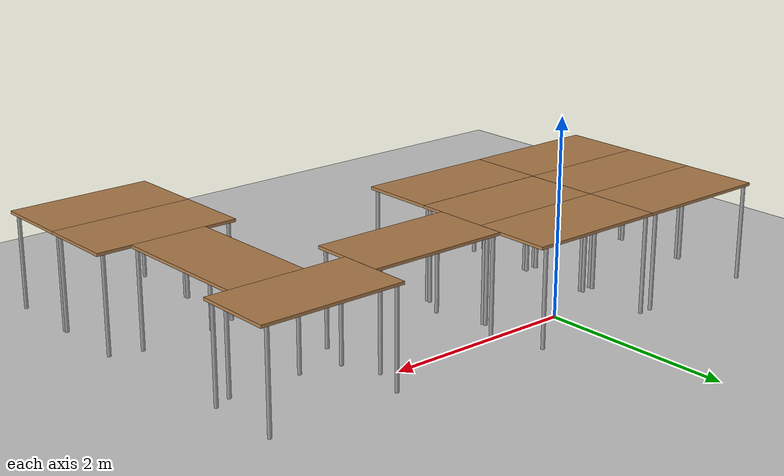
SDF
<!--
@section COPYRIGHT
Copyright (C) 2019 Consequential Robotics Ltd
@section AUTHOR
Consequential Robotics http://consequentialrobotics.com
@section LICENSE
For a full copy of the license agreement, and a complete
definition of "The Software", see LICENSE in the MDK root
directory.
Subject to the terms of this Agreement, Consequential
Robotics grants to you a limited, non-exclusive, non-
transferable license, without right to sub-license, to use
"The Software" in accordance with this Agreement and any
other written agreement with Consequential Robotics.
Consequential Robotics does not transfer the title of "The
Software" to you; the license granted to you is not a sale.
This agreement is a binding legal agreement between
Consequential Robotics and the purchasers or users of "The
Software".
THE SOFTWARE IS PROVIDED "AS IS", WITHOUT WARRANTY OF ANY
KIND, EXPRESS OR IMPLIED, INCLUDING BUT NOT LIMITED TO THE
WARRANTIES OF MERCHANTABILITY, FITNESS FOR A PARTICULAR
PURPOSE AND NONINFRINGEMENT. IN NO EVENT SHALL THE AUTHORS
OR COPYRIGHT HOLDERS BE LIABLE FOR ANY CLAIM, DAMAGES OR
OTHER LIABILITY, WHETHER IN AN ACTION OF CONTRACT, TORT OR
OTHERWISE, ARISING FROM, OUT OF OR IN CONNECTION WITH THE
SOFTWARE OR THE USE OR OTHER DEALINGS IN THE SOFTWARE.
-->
<sdf version="1.6">
 <world name="default">
  <physics name="default_physics" default="0" type="ode">
   <max_step_size>0.002</max_step_size>
   <real_time_factor>1</real_time_factor>
   <real_time_update_rate>500</real_time_update_rate>
  </physics>
  <scene><ambient>0.4 0.4 0.4 1</ambient><background>0.7 0.7 0.7 1</background><shadows>1</shadows></scene>
  <light name="sun" type="directional">
   <pose>0 0 10 0 -0 0</pose>
   <diffuse>0.8 0.8 0.8 1</diffuse>
   <specular>0.1 0.1 0.1 1</specular>
   <attenuation>
    <range>1000</range>
    <constant>0.9</constant>
    <linear>0.01</linear>
    <quadratic>0.001</quadratic>
   </attenuation>
   <direction>-0.5 0.5 -1</direction>
  </light>
  <model name="ground_plane">
   <static>1</static>
   <link name="link">
    <collision name="collision">
     <geometry><plane><normal>0 0 1</normal><size>100 100</size></plane></geometry>
     <surface><friction><ode><mu>1</mu><mu2>1</mu2></ode></friction></surface>
    </collision>
    <visual name="visual">
     <cast_shadows>0</cast_shadows>
     <geometry><plane><normal>0 0 1</normal><size>100 100</size></plane></geometry>
     <material>
      <script><uri>file://media/materials/scripts/gazebo.material</uri><name>Gazebo/Grey</name></script>
     </material>
    </visual>
   </link>
  </model>
  <gravity>0 0 -9.8</gravity>
  <magnetic_field>6e-06 2.3e-05 -4.2e-05</magnetic_field>
  <atmosphere type="adiabatic"/>
  <spherical_coordinates>
   <surface_model>EARTH_WGS84</surface_model>
   <latitude_deg>0</latitude_deg>
   <longitude_deg>0</longitude_deg>
   <elevation>0</elevation>
   <heading_deg>0</heading_deg>
  </spherical_coordinates>
  <model name="table">
   <static>1</static>
   <link name="link">
    <collision name="surface">
     <pose>0 0 1 0 -0 0</pose>
     <geometry><box><size>1.5 0.8 0.03</size></box></geometry>
     <surface><friction><ode><mu>0.6</mu><mu2>0.6</mu2></ode></friction></surface>
    </collision>
    <visual name="visual1">
     <pose>0 0 1 0 -0 0</pose>
     <geometry><box><size>1.5 0.8 0.03</size></box></geometry>
     <material>
      <script><uri>file://media/materials/scripts/gazebo.material</uri><name>Gazebo/Wood</name></script>
     </material>
    </visual>
    <collision name="front_left_leg">
     <pose>0.68 0.38 0.5 0 -0 0</pose>
     <geometry><cylinder><radius>0.02</radius><length>1</length></cylinder></geometry>
    </collision>
    <visual name="front_left_leg">
     <pose>0.68 0.38 0.5 0 -0 0</pose>
     <geometry><cylinder><radius>0.02</radius><length>1</length></cylinder></geometry>
     <material>
      <script><uri>file://media/materials/scripts/gazebo.material</uri><name>Gazebo/Grey</name></script>
     </material>
    </visual>
    <collision name="front_right_leg">
     <pose>0.68 -0.38 0.5 0 -0 0</pose>
     <geometry><cylinder><radius>0.02</radius><length>1</length></cylinder></geometry>
    </collision>
    <visual name="front_right_leg">
     <pose>0.68 -0.38 0.5 0 -0 0</pose>
     <geometry><cylinder><radius>0.02</radius><length>1</length></cylinder></geometry>
     <material>
      <script><uri>file://media/materials/scripts/gazebo.material</uri><name>Gazebo/Grey</name></script>
     </material>
    </visual>
    <collision name="back_right_leg">
     <pose>-0.68 -0.38 0.5 0 -0 0</pose>
     <geometry><cylinder><radius>0.02</radius><length>1</length></cylinder></geometry>
    </collision>
    <visual name="back_right_leg">
     <pose>-0.68 -0.38 0.5 0 -0 0</pose>
     <geometry><cylinder><radius>0.02</radius><length>1</length></cylinder></geometry>
     <material>
      <script><uri>file://media/materials/scripts/gazebo.material</uri><name>Gazebo/Grey</name></script>
     </material>
    </visual>
    <collision name="back_left_leg">
     <pose>-0.68 0.38 0.5 0 -0 0</pose>
     <geometry><cylinder><radius>0.02</radius><length>1</length></cylinder></geometry>
    </collision>
    <visual name="back_left_leg">
     <pose>-0.68 0.38 0.5 0 -0 0</pose>
     <geometry><cylinder><radius>0.02</radius><length>1</length></cylinder></geometry>
     <material>
      <script><uri>file://media/materials/scripts/gazebo.material</uri><name>Gazebo/Grey</name></script>
     </material>
    </visual>
   </link>
   <pose>-0.029865 -1.50426 0.000771 0 -0 0</pose>
  </model>
  <model name="table_0">
   <static>1</static>
   <link name="link">
    <collision name="surface">
     <pose>0 0 1 0 -0 0</pose>
     <geometry><box><size>1.5 0.8 0.03</size></box></geometry>
     <surface><friction><ode><mu>0.6</mu><mu2>0.6</mu2></ode></friction></surface>
    </collision>
    <visual name="visual1">
     <pose>0 0 1 0 -0 0</pose>
     <geometry><box><size>1.5 0.8 0.03</size></box></geometry>
     <material>
      <script><uri>file://media/materials/scripts/gazebo.material</uri><name>Gazebo/Wood</name></script>
     </material>
    </visual>
    <collision name="front_left_leg">
     <pose>0.68 0.38 0.5 0 -0 0</pose>
     <geometry><cylinder><radius>0.02</radius><length>1</length></cylinder></geometry>
    </collision>
    <visual name="front_left_leg">
     <pose>0.68 0.38 0.5 0 -0 0</pose>
     <geometry><cylinder><radius>0.02</radius><length>1</length></cylinder></geometry>
     <material>
      <script><uri>file://media/materials/scripts/gazebo.material</uri><name>Gazebo/Grey</name></script>
     </material>
    </visual>
    <collision name="front_right_leg">
     <pose>0.68 -0.38 0.5 0 -0 0</pose>
     <geometry><cylinder><radius>0.02</radius><length>1</length></cylinder></geometry>
    </collision>
    <visual name="front_right_leg">
     <pose>0.68 -0.38 0.5 0 -0 0</pose>
     <geometry><cylinder><radius>0.02</radius><length>1</length></cylinder></geometry>
     <material>
      <script><uri>file://media/materials/scripts/gazebo.material</uri><name>Gazebo/Grey</name></script>
     </material>
    </visual>
    <collision name="back_right_leg">
     <pose>-0.68 -0.38 0.5 0 -0 0</pose>
     <geometry><cylinder><radius>0.02</radius><length>1</length></cylinder></geometry>
    </collision>
    <visual name="back_right_leg">
     <pose>-0.68 -0.38 0.5 0 -0 0</pose>
     <geometry><cylinder><radius>0.02</radius><length>1</length></cylinder></geometry>
     <material>
      <script><uri>file://media/materials/scripts/gazebo.material</uri><name>Gazebo/Grey</name></script>
     </material>
    </visual>
    <collision name="back_left_leg">
     <pose>-0.68 0.38 0.5 0 -0 0</pose>
     <geometry><cylinder><radius>0.02</radius><length>1</length></cylinder></geometry>
    </collision>
    <visual name="back_left_leg">
     <pose>-0.68 0.38 0.5 0 -0 0</pose>
     <geometry><cylinder><radius>0.02</radius><length>1</length></cylinder></geometry>
     <material>
      <script><uri>file://media/materials/scripts/gazebo.material</uri><name>Gazebo/Grey</name></script>
     </material>
    </visual>
   </link>
   <pose>-0.026902 -0.70555 0 0 -0 0</pose>
  </model>
  <model name="table_1">
   <static>1</static>
   <link name="link">
    <collision name="surface">
     <pose>0 0 1 0 -0 0</pose>
     <geometry><box><size>1.5 0.8 0.03</size></box></geometry>
     <surface><friction><ode><mu>0.6</mu><mu2>0.6</mu2></ode></friction></surface>
    </collision>
    <visual name="visual1">
     <pose>0 0 1 0 -0 0</pose>
     <geometry><box><size>1.5 0.8 0.03</size></box></geometry>
     <material>
      <script><uri>file://media/materials/scripts/gazebo.material</uri><name>Gazebo/Wood</name></script>
     </material>
    </visual>
    <collision name="front_left_leg">
     <pose>0.68 0.38 0.5 0 -0 0</pose>
     <geometry><cylinder><radius>0.02</radius><length>1</length></cylinder></geometry>
    </collision>
    <visual name="front_left_leg">
     <pose>0.68 0.38 0.5 0 -0 0</pose>
     <geometry><cylinder><radius>0.02</radius><length>1</length></cylinder></geometry>
     <material>
      <script><uri>file://media/materials/scripts/gazebo.material</uri><name>Gazebo/Grey</name></script>
     </material>
    </visual>
    <collision name="front_right_leg">
     <pose>0.68 -0.38 0.5 0 -0 0</pose>
     <geometry><cylinder><radius>0.02</radius><length>1</length></cylinder></geometry>
    </collision>
    <visual name="front_right_leg">
     <pose>0.68 -0.38 0.5 0 -0 0</pose>
     <geometry><cylinder><radius>0.02</radius><length>1</length></cylinder></geometry>
     <material>
      <script><uri>file://media/materials/scripts/gazebo.material</uri><name>Gazebo/Grey</name></script>
     </material>
    </visual>
    <collision name="back_right_leg">
     <pose>-0.68 -0.38 0.5 0 -0 0</pose>
     <geometry><cylinder><radius>0.02</radius><length>1</length></cylinder></geometry>
    </collision>
    <visual name="back_right_leg">
     <pose>-0.68 -0.38 0.5 0 -0 0</pose>
     <geometry><cylinder><radius>0.02</radius><length>1</length></cylinder></geometry>
     <material>
      <script><uri>file://media/materials/scripts/gazebo.material</uri><name>Gazebo/Grey</name></script>
     </material>
    </visual>
    <collision name="back_left_leg">
     <pose>-0.68 0.38 0.5 0 -0 0</pose>
     <geometry><cylinder><radius>0.02</radius><length>1</length></cylinder></geometry>
    </collision>
    <visual name="back_left_leg">
     <pose>-0.68 0.38 0.5 0 -0 0</pose>
     <geometry><cylinder><radius>0.02</radius><length>1</length></cylinder></geometry>
     <material>
      <script><uri>file://media/materials/scripts/gazebo.material</uri><name>Gazebo/Grey</name></script>
     </material>
    </visual>
   </link>
   <pose>1.4722 -0.449063 0 0 -0 0</pose>
  </model>
  <model name="table_2">
   <static>1</static>
   <link name="link">
    <collision name="surface">
     <pose>0 0 1 0 -0 0</pose>
     <geometry><box><size>1.5 0.8 0.03</size></box></geometry>
     <surface><friction><ode><mu>0.6</mu><mu2>0.6</mu2></ode></friction></surface>
    </collision>
    <visual name="visual1">
     <pose>0 0 1 0 -0 0</pose>
     <geometry><box><size>1.5 0.8 0.03</size></box></geometry>
     <material>
      <script><uri>file://media/materials/scripts/gazebo.material</uri><name>Gazebo/Wood</name></script>
     </material>
    </visual>
    <collision name="front_left_leg">
     <pose>0.68 0.38 0.5 0 -0 0</pose>
     <geometry><cylinder><radius>0.02</radius><length>1</length></cylinder></geometry>
    </collision>
    <visual name="front_left_leg">
     <pose>0.68 0.38 0.5 0 -0 0</pose>
     <geometry><cylinder><radius>0.02</radius><length>1</length></cylinder></geometry>
     <material>
      <script><uri>file://media/materials/scripts/gazebo.material</uri><name>Gazebo/Grey</name></script>
     </material>
    </visual>
    <collision name="front_right_leg">
     <pose>0.68 -0.38 0.5 0 -0 0</pose>
     <geometry><cylinder><radius>0.02</radius><length>1</length></cylinder></geometry>
    </collision>
    <visual name="front_right_leg">
     <pose>0.68 -0.38 0.5 0 -0 0</pose>
     <geometry><cylinder><radius>0.02</radius><length>1</length></cylinder></geometry>
     <material>
      <script><uri>file://media/materials/scripts/gazebo.material</uri><name>Gazebo/Grey</name></script>
     </material>
    </visual>
    <collision name="back_right_leg">
     <pose>-0.68 -0.38 0.5 0 -0 0</pose>
     <geometry><cylinder><radius>0.02</radius><length>1</length></cylinder></geometry>
    </collision>
    <visual name="back_right_leg">
     <pose>-0.68 -0.38 0.5 0 -0 0</pose>
     <geometry><cylinder><radius>0.02</radius><length>1</length></cylinder></geometry>
     <material>
      <script><uri>file://media/materials/scripts/gazebo.material</uri><name>Gazebo/Grey</name></script>
     </material>
    </visual>
    <collision name="back_left_leg">
     <pose>-0.68 0.38 0.5 0 -0 0</pose>
     <geometry><cylinder><radius>0.02</radius><length>1</length></cylinder></geometry>
    </collision>
    <visual name="back_left_leg">
     <pose>-0.68 0.38 0.5 0 -0 0</pose>
     <geometry><cylinder><radius>0.02</radius><length>1</length></cylinder></geometry>
     <material>
      <script><uri>file://media/materials/scripts/gazebo.material</uri><name>Gazebo/Grey</name></script>
     </material>
    </visual>
   </link>
   <pose>2.97282 -0.063954 0 0 -0 0</pose>
  </model>
  <model name="table_3">
   <static>1</static>
   <link name="link">
    <collision name="surface">
     <pose>0 0 1 0 -0 0</pose>
     <geometry><box><size>1.5 0.8 0.03</size></box></geometry>
     <surface><friction><ode><mu>0.6</mu><mu2>0.6</mu2></ode></friction></surface>
    </collision>
    <visual name="visual1">
     <pose>0 0 1 0 -0 0</pose>
     <geometry><box><size>1.5 0.8 0.03</size></box></geometry>
     <material>
      <script><uri>file://media/materials/scripts/gazebo.material</uri><name>Gazebo/Wood</name></script>
     </material>
    </visual>
    <collision name="front_left_leg">
     <pose>0.68 0.38 0.5 0 -0 0</pose>
     <geometry><cylinder><radius>0.02</radius><length>1</length></cylinder></geometry>
    </collision>
    <visual name="front_left_leg">
     <pose>0.68 0.38 0.5 0 -0 0</pose>
     <geometry><cylinder><radius>0.02</radius><length>1</length></cylinder></geometry>
     <material>
      <script><uri>file://media/materials/scripts/gazebo.material</uri><name>Gazebo/Grey</name></script>
     </material>
    </visual>
    <collision name="front_right_leg">
     <pose>0.68 -0.38 0.5 0 -0 0</pose>
     <geometry><cylinder><radius>0.02</radius><length>1</length></cylinder></geometry>
    </collision>
    <visual name="front_right_leg">
     <pose>0.68 -0.38 0.5 0 -0 0</pose>
     <geometry><cylinder><radius>0.02</radius><length>1</length></cylinder></geometry>
     <material>
      <script><uri>file://media/materials/scripts/gazebo.material</uri><name>Gazebo/Grey</name></script>
     </material>
    </visual>
    <collision name="back_right_leg">
     <pose>-0.68 -0.38 0.5 0 -0 0</pose>
     <geometry><cylinder><radius>0.02</radius><length>1</length></cylinder></geometry>
    </collision>
    <visual name="back_right_leg">
     <pose>-0.68 -0.38 0.5 0 -0 0</pose>
     <geometry><cylinder><radius>0.02</radius><length>1</length></cylinder></geometry>
     <material>
      <script><uri>file://media/materials/scripts/gazebo.material</uri><name>Gazebo/Grey</name></script>
     </material>
    </visual>
    <collision name="back_left_leg">
     <pose>-0.68 0.38 0.5 0 -0 0</pose>
     <geometry><cylinder><radius>0.02</radius><length>1</length></cylinder></geometry>
    </collision>
    <visual name="back_left_leg">
     <pose>-0.68 0.38 0.5 0 -0 0</pose>
     <geometry><cylinder><radius>0.02</radius><length>1</length></cylinder></geometry>
     <material>
      <script><uri>file://media/materials/scripts/gazebo.material</uri><name>Gazebo/Grey</name></script>
     </material>
    </visual>
   </link>
   <pose>3.08562 -1.20755 0 0 0 -1.56493</pose>
  </model>
  <model name="table_4">
   <static>1</static>
   <link name="link">
    <collision name="surface">
     <pose>0 0 1 0 -0 0</pose>
     <geometry><box><size>1.5 0.8 0.03</size></box></geometry>
     <surface><friction><ode><mu>0.6</mu><mu2>0.6</mu2></ode></friction></surface>
    </collision>
    <visual name="visual1">
     <pose>0 0 1 0 -0 0</pose>
     <geometry><box><size>1.5 0.8 0.03</size></box></geometry>
     <material>
      <script><uri>file://media/materials/scripts/gazebo.material</uri><name>Gazebo/Wood</name></script>
     </material>
    </visual>
    <collision name="front_left_leg">
     <pose>0.68 0.38 0.5 0 -0 0</pose>
     <geometry><cylinder><radius>0.02</radius><length>1</length></cylinder></geometry>
    </collision>
    <visual name="front_left_leg">
     <pose>0.68 0.38 0.5 0 -0 0</pose>
     <geometry><cylinder><radius>0.02</radius><length>1</length></cylinder></geometry>
     <material>
      <script><uri>file://media/materials/scripts/gazebo.material</uri><name>Gazebo/Grey</name></script>
     </material>
    </visual>
    <collision name="front_right_leg">
     <pose>0.68 -0.38 0.5 0 -0 0</pose>
     <geometry><cylinder><radius>0.02</radius><length>1</length></cylinder></geometry>
    </collision>
    <visual name="front_right_leg">
     <pose>0.68 -0.38 0.5 0 -0 0</pose>
     <geometry><cylinder><radius>0.02</radius><length>1</length></cylinder></geometry>
     <material>
      <script><uri>file://media/materials/scripts/gazebo.material</uri><name>Gazebo/Grey</name></script>
     </material>
    </visual>
    <collision name="back_right_leg">
     <pose>-0.68 -0.38 0.5 0 -0 0</pose>
     <geometry><cylinder><radius>0.02</radius><length>1</length></cylinder></geometry>
    </collision>
    <visual name="back_right_leg">
     <pose>-0.68 -0.38 0.5 0 -0 0</pose>
     <geometry><cylinder><radius>0.02</radius><length>1</length></cylinder></geometry>
     <material>
      <script><uri>file://media/materials/scripts/gazebo.material</uri><name>Gazebo/Grey</name></script>
     </material>
    </visual>
    <collision name="back_left_leg">
     <pose>-0.68 0.38 0.5 0 -0 0</pose>
     <geometry><cylinder><radius>0.02</radius><length>1</length></cylinder></geometry>
    </collision>
    <visual name="back_left_leg">
     <pose>-0.68 0.38 0.5 0 -0 0</pose>
     <geometry><cylinder><radius>0.02</radius><length>1</length></cylinder></geometry>
     <material>
      <script><uri>file://media/materials/scripts/gazebo.material</uri><name>Gazebo/Grey</name></script>
     </material>
    </visual>
   </link>
   <pose>3.09599 -2.35553 0 0 -0 0</pose>
  </model>
  <model name="table_4_clone">
   <static>1</static>
   <link name="link">
    <collision name="surface">
     <pose>0 0 1 0 -0 0</pose>
     <geometry><box><size>1.5 0.8 0.03</size></box></geometry>
     <surface><friction><ode><mu>0.6</mu><mu2>0.6</mu2></ode></friction></surface>
    </collision>
    <visual name="visual1">
     <pose>0 0 1 0 -0 0</pose>
     <geometry><box><size>1.5 0.8 0.03</size></box></geometry>
     <material>
      <script><uri>file://media/materials/scripts/gazebo.material</uri><name>Gazebo/Wood</name></script>
     </material>
    </visual>
    <collision name="front_left_leg">
     <pose>0.68 0.38 0.5 0 -0 0</pose>
     <geometry><cylinder><radius>0.02</radius><length>1</length></cylinder></geometry>
    </collision>
    <visual name="front_left_leg">
     <pose>0.68 0.38 0.5 0 -0 0</pose>
     <geometry><cylinder><radius>0.02</radius><length>1</length></cylinder></geometry>
     <material>
      <script><uri>file://media/materials/scripts/gazebo.material</uri><name>Gazebo/Grey</name></script>
     </material>
    </visual>
    <collision name="front_right_leg">
     <pose>0.68 -0.38 0.5 0 -0 0</pose>
     <geometry><cylinder><radius>0.02</radius><length>1</length></cylinder></geometry>
    </collision>
    <visual name="front_right_leg">
     <pose>0.68 -0.38 0.5 0 -0 0</pose>
     <geometry><cylinder><radius>0.02</radius><length>1</length></cylinder></geometry>
     <material>
      <script><uri>file://media/materials/scripts/gazebo.material</uri><name>Gazebo/Grey</name></script>
     </material>
    </visual>
    <collision name="back_right_leg">
     <pose>-0.68 -0.38 0.5 0 -0 0</pose>
     <geometry><cylinder><radius>0.02</radius><length>1</length></cylinder></geometry>
    </collision>
    <visual name="back_right_leg">
     <pose>-0.68 -0.38 0.5 0 -0 0</pose>
     <geometry><cylinder><radius>0.02</radius><length>1</length></cylinder></geometry>
     <material>
      <script><uri>file://media/materials/scripts/gazebo.material</uri><name>Gazebo/Grey</name></script>
     </material>
    </visual>
    <collision name="back_left_leg">
     <pose>-0.68 0.38 0.5 0 -0 0</pose>
     <geometry><cylinder><radius>0.02</radius><length>1</length></cylinder></geometry>
    </collision>
    <visual name="back_left_leg">
     <pose>-0.68 0.38 0.5 0 -0 0</pose>
     <geometry><cylinder><radius>0.02</radius><length>1</length></cylinder></geometry>
     <material>
      <script><uri>file://media/materials/scripts/gazebo.material</uri><name>Gazebo/Grey</name></script>
     </material>
    </visual>
   </link>
   <pose>3.09585 -3.15557 0 0 -0 0</pose>
  </model>
  <model name="table_clone">
   <static>1</static>
   <link name="link">
    <collision name="surface">
     <pose>0 0 1 0 -0 0</pose>
     <geometry><box><size>1.5 0.8 0.03</size></box></geometry>
     <surface><friction><ode><mu>0.6</mu><mu2>0.6</mu2></ode></friction></surface>
    </collision>
    <visual name="visual1">
     <pose>0 0 1 0 -0 0</pose>
     <geometry><box><size>1.5 0.8 0.03</size></box></geometry>
     <material>
      <script><uri>file://media/materials/scripts/gazebo.material</uri><name>Gazebo/Wood</name></script>
     </material>
    </visual>
    <collision name="front_left_leg">
     <pose>0.68 0.38 0.5 0 -0 0</pose>
     <geometry><cylinder><radius>0.02</radius><length>1</length></cylinder></geometry>
    </collision>
    <visual name="front_left_leg">
     <pose>0.68 0.38 0.5 0 -0 0</pose>
     <geometry><cylinder><radius>0.02</radius><length>1</length></cylinder></geometry>
     <material>
      <script><uri>file://media/materials/scripts/gazebo.material</uri><name>Gazebo/Grey</name></script>
     </material>
    </visual>
    <collision name="front_right_leg">
     <pose>0.68 -0.38 0.5 0 -0 0</pose>
     <geometry><cylinder><radius>0.02</radius><length>1</length></cylinder></geometry>
    </collision>
    <visual name="front_right_leg">
     <pose>0.68 -0.38 0.5 0 -0 0</pose>
     <geometry><cylinder><radius>0.02</radius><length>1</length></cylinder></geometry>
     <material>
      <script><uri>file://media/materials/scripts/gazebo.material</uri><name>Gazebo/Grey</name></script>
     </material>
    </visual>
    <collision name="back_right_leg">
     <pose>-0.68 -0.38 0.5 0 -0 0</pose>
     <geometry><cylinder><radius>0.02</radius><length>1</length></cylinder></geometry>
    </collision>
    <visual name="back_right_leg">
     <pose>-0.68 -0.38 0.5 0 -0 0</pose>
     <geometry><cylinder><radius>0.02</radius><length>1</length></cylinder></geometry>
     <material>
      <script><uri>file://media/materials/scripts/gazebo.material</uri><name>Gazebo/Grey</name></script>
     </material>
    </visual>
    <collision name="back_left_leg">
     <pose>-0.68 0.38 0.5 0 -0 0</pose>
     <geometry><cylinder><radius>0.02</radius><length>1</length></cylinder></geometry>
    </collision>
    <visual name="back_left_leg">
     <pose>-0.68 0.38 0.5 0 -0 0</pose>
     <geometry><cylinder><radius>0.02</radius><length>1</length></cylinder></geometry>
     <material>
      <script><uri>file://media/materials/scripts/gazebo.material</uri><name>Gazebo/Grey</name></script>
     </material>
    </visual>
   </link>
   <pose>-0.026556 0.092503 0.000771 0 -0 0</pose>
  </model>
  <model name="table_clone_clone">
   <static>1</static>
   <link name="link">
    <collision name="surface">
     <pose>0 0 1 0 -0 0</pose>
     <geometry><box><size>1.5 0.8 0.03</size></box></geometry>
     <surface><friction><ode><mu>0.6</mu><mu2>0.6</mu2></ode></friction></surface>
    </collision>
    <visual name="visual1">
     <pose>0 0 1 0 -0 0</pose>
     <geometry><box><size>1.5 0.8 0.03</size></box></geometry>
     <material>
      <script><uri>file://media/materials/scripts/gazebo.material</uri><name>Gazebo/Wood</name></script>
     </material>
    </visual>
    <collision name="front_left_leg">
     <pose>0.68 0.38 0.5 0 -0 0</pose>
     <geometry><cylinder><radius>0.02</radius><length>1</length></cylinder></geometry>
    </collision>
    <visual name="front_left_leg">
     <pose>0.68 0.38 0.5 0 -0 0</pose>
     <geometry><cylinder><radius>0.02</radius><length>1</length></cylinder></geometry>
     <material>
      <script><uri>file://media/materials/scripts/gazebo.material</uri><name>Gazebo/Grey</name></script>
     </material>
    </visual>
    <collision name="front_right_leg">
     <pose>0.68 -0.38 0.5 0 -0 0</pose>
     <geometry><cylinder><radius>0.02</radius><length>1</length></cylinder></geometry>
    </collision>
    <visual name="front_right_leg">
     <pose>0.68 -0.38 0.5 0 -0 0</pose>
     <geometry><cylinder><radius>0.02</radius><length>1</length></cylinder></geometry>
     <material>
      <script><uri>file://media/materials/scripts/gazebo.material</uri><name>Gazebo/Grey</name></script>
     </material>
    </visual>
    <collision name="back_right_leg">
     <pose>-0.68 -0.38 0.5 0 -0 0</pose>
     <geometry><cylinder><radius>0.02</radius><length>1</length></cylinder></geometry>
    </collision>
    <visual name="back_right_leg">
     <pose>-0.68 -0.38 0.5 0 -0 0</pose>
     <geometry><cylinder><radius>0.02</radius><length>1</length></cylinder></geometry>
     <material>
      <script><uri>file://media/materials/scripts/gazebo.material</uri><name>Gazebo/Grey</name></script>
     </material>
    </visual>
    <collision name="back_left_leg">
     <pose>-0.68 0.38 0.5 0 -0 0</pose>
     <geometry><cylinder><radius>0.02</radius><length>1</length></cylinder></geometry>
    </collision>
    <visual name="back_left_leg">
     <pose>-0.68 0.38 0.5 0 -0 0</pose>
     <geometry><cylinder><radius>0.02</radius><length>1</length></cylinder></geometry>
     <material>
      <script><uri>file://media/materials/scripts/gazebo.material</uri><name>Gazebo/Grey</name></script>
     </material>
    </visual>
   </link>
   <pose>-1.52646 0.091339 0.000771 0 0 -3.14005</pose>
  </model>
  <model name="table_clone_clone_clone">
   <static>1</static>
   <link name="link">
    <collision name="surface">
     <pose>0 0 1 0 -0 0</pose>
     <geometry><box><size>1.5 0.8 0.03</size></box></geometry>
     <surface><friction><ode><mu>0.6</mu><mu2>0.6</mu2></ode></friction></surface>
    </collision>
    <visual name="visual1">
     <pose>0 0 1 0 -0 0</pose>
     <geometry><box><size>1.5 0.8 0.03</size></box></geometry>
     <material>
      <script><uri>file://media/materials/scripts/gazebo.material</uri><name>Gazebo/Wood</name></script>
     </material>
    </visual>
    <collision name="front_left_leg">
     <pose>0.68 0.38 0.5 0 -0 0</pose>
     <geometry><cylinder><radius>0.02</radius><length>1</length></cylinder></geometry>
    </collision>
    <visual name="front_left_leg">
     <pose>0.68 0.38 0.5 0 -0 0</pose>
     <geometry><cylinder><radius>0.02</radius><length>1</length></cylinder></geometry>
     <material>
      <script><uri>file://media/materials/scripts/gazebo.material</uri><name>Gazebo/Grey</name></script>
     </material>
    </visual>
    <collision name="front_right_leg">
     <pose>0.68 -0.38 0.5 0 -0 0</pose>
     <geometry><cylinder><radius>0.02</radius><length>1</length></cylinder></geometry>
    </collision>
    <visual name="front_right_leg">
     <pose>0.68 -0.38 0.5 0 -0 0</pose>
     <geometry><cylinder><radius>0.02</radius><length>1</length></cylinder></geometry>
     <material>
      <script><uri>file://media/materials/scripts/gazebo.material</uri><name>Gazebo/Grey</name></script>
     </material>
    </visual>
    <collision name="back_right_leg">
     <pose>-0.68 -0.38 0.5 0 -0 0</pose>
     <geometry><cylinder><radius>0.02</radius><length>1</length></cylinder></geometry>
    </collision>
    <visual name="back_right_leg">
     <pose>-0.68 -0.38 0.5 0 -0 0</pose>
     <geometry><cylinder><radius>0.02</radius><length>1</length></cylinder></geometry>
     <material>
      <script><uri>file://media/materials/scripts/gazebo.material</uri><name>Gazebo/Grey</name></script>
     </material>
    </visual>
    <collision name="back_left_leg">
     <pose>-0.68 0.38 0.5 0 -0 0</pose>
     <geometry><cylinder><radius>0.02</radius><length>1</length></cylinder></geometry>
    </collision>
    <visual name="back_left_leg">
     <pose>-0.68 0.38 0.5 0 -0 0</pose>
     <geometry><cylinder><radius>0.02</radius><length>1</length></cylinder></geometry>
     <material>
      <script><uri>file://media/materials/scripts/gazebo.material</uri><name>Gazebo/Grey</name></script>
     </material>
    </visual>
   </link>
   <pose>-1.52606 -0.707862 0.000771 0 0 -3.14102</pose>
  </model>
  <model name="table_clone_clone_clone_0">
   <static>1</static>
   <link name="link">
    <collision name="surface">
     <pose>0 0 1 0 -0 0</pose>
     <geometry><box><size>1.5 0.8 0.03</size></box></geometry>
     <surface><friction><ode><mu>0.6</mu><mu2>0.6</mu2></ode></friction></surface>
    </collision>
    <visual name="visual1">
     <pose>0 0 1 0 -0 0</pose>
     <geometry><box><size>1.5 0.8 0.03</size></box></geometry>
     <material>
      <script><uri>file://media/materials/scripts/gazebo.material</uri><name>Gazebo/Wood</name></script>
     </material>
    </visual>
    <collision name="front_left_leg">
     <pose>0.68 0.38 0.5 0 -0 0</pose>
     <geometry><cylinder><radius>0.02</radius><length>1</length></cylinder></geometry>
    </collision>
    <visual name="front_left_leg">
     <pose>0.68 0.38 0.5 0 -0 0</pose>
     <geometry><cylinder><radius>0.02</radius><length>1</length></cylinder></geometry>
     <material>
      <script><uri>file://media/materials/scripts/gazebo.material</uri><name>Gazebo/Grey</name></script>
     </material>
    </visual>
    <collision name="front_right_leg">
     <pose>0.68 -0.38 0.5 0 -0 0</pose>
     <geometry><cylinder><radius>0.02</radius><length>1</length></cylinder></geometry>
    </collision>
    <visual name="front_right_leg">
     <pose>0.68 -0.38 0.5 0 -0 0</pose>
     <geometry><cylinder><radius>0.02</radius><length>1</length></cylinder></geometry>
     <material>
      <script><uri>file://media/materials/scripts/gazebo.material</uri><name>Gazebo/Grey</name></script>
     </material>
    </visual>
    <collision name="back_right_leg">
     <pose>-0.68 -0.38 0.5 0 -0 0</pose>
     <geometry><cylinder><radius>0.02</radius><length>1</length></cylinder></geometry>
    </collision>
    <visual name="back_right_leg">
     <pose>-0.68 -0.38 0.5 0 -0 0</pose>
     <geometry><cylinder><radius>0.02</radius><length>1</length></cylinder></geometry>
     <material>
      <script><uri>file://media/materials/scripts/gazebo.material</uri><name>Gazebo/Grey</name></script>
     </material>
    </visual>
    <collision name="back_left_leg">
     <pose>-0.68 0.38 0.5 0 -0 0</pose>
     <geometry><cylinder><radius>0.02</radius><length>1</length></cylinder></geometry>
    </collision>
    <visual name="back_left_leg">
     <pose>-0.68 0.38 0.5 0 -0 0</pose>
     <geometry><cylinder><radius>0.02</radius><length>1</length></cylinder></geometry>
     <material>
      <script><uri>file://media/materials/scripts/gazebo.material</uri><name>Gazebo/Grey</name></script>
     </material>
    </visual>
   </link>
   <pose>-1.52833 -1.50449 0.000771 0 0 -3.14113</pose>
  </model>
  <light name="user_spot_light_0" type="spot">
   <pose>-0.857353 -0.674599 1 0 -0 0</pose>
   <diffuse>0.5 0.5 0.5 1</diffuse>
   <specular>0.1 0.1 0.1 1</specular>
   <direction>0 0 -1</direction>
   <attenuation>
    <range>20</range>
    <constant>0.2</constant>
    <linear>0.01</linear>
    <quadratic>0.001</quadratic>
   </attenuation>
   <cast_shadows>0</cast_shadows>
   <spot><inner_angle>0.6</inner_angle><outer_angle>0.85</outer_angle><falloff>1</falloff></spot>
  </light>
 </world>
</sdf>
